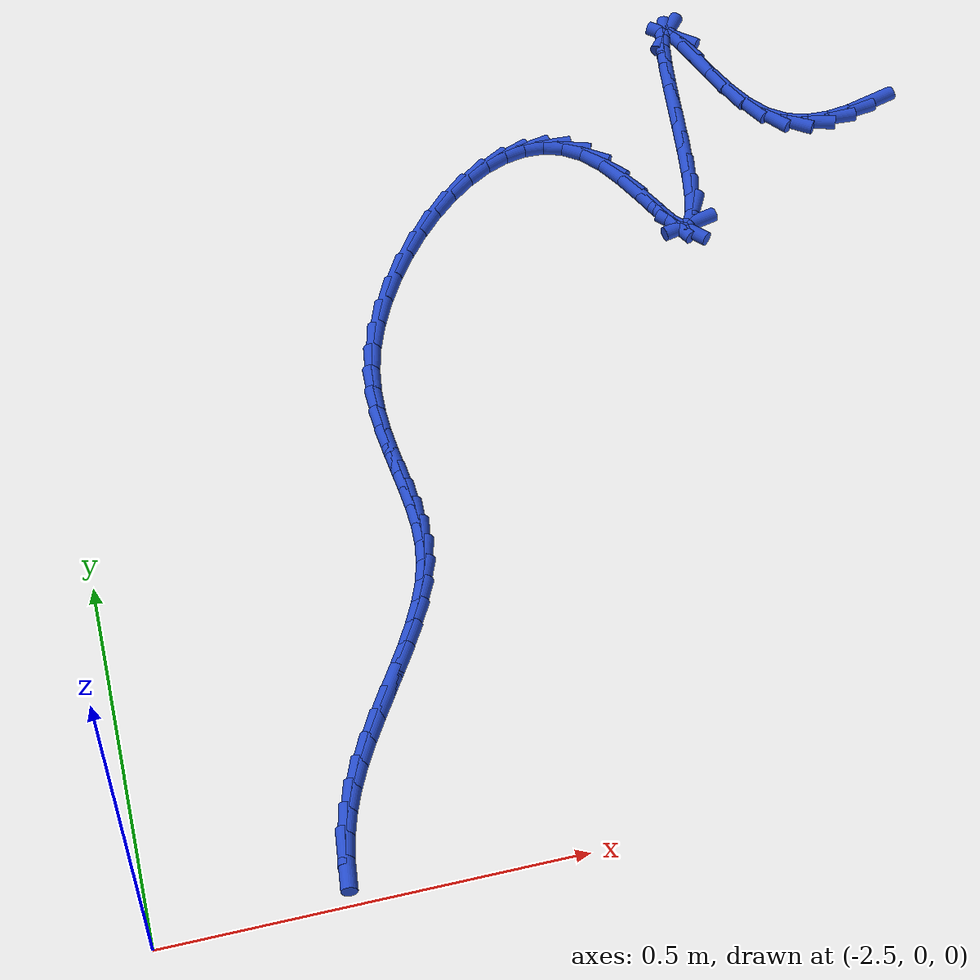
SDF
<sdf version="1.6">
 <world name="default">
  <model name="ground_plane">
   <static>1</static>
   <link name="link">
    <collision name="collision">
     <geometry><plane><normal>0 0 1</normal><size>100 100</size></plane></geometry>
     <surface><friction><ode><mu>100</mu><mu2>50</mu2></ode></friction></surface>
    </collision>
    <visual name="visual">
     <cast_shadows>0</cast_shadows>
     <geometry><plane><normal>0 0 1</normal><size>100 100</size></plane></geometry>
     <material>
      <script><uri>file://media/materials/scripts/gazebo.material</uri><name>Gazebo/WhiteGlow</name></script>
     </material>
    </visual>
   </link>
  </model>
  <model name="line">
   <link name="link_69">
    <pose>-1.290023211756222 1.083039104053508 0.01 0 1.57 0.29378081700761033</pose>
    <collision name="collision">
     <geometry><cylinder><radius>0.01</radius><length>0.08</length></cylinder></geometry>
    </collision>
    <visual name="visual">
     <material>
      <script><name>Gazebo/Blue</name><uri>file://media/materials/scripts/gazebo.material</uri></script>
     </material>
     <geometry><cylinder><radius>0.01</radius><length>0.08</length></cylinder></geometry>
    </visual>
   </link>
   <link name="link_70">
    <pose>-1.3250109071169014 1.0724541031591772 0.01 0 1.57 0.16319276041672318</pose>
    <collision name="collision">
     <geometry><cylinder><radius>0.01</radius><length>0.08</length></cylinder></geometry>
    </collision>
    <visual name="visual">
     <material>
      <script><name>Gazebo/Blue</name><uri>file://media/materials/scripts/gazebo.material</uri></script>
     </material>
     <geometry><cylinder><radius>0.01</radius><length>0.08</length></cylinder></geometry>
    </visual>
   </link>
   <link name="link_71">
    <pose>-1.3583430713101499 1.0669657266270685 0.01 0 1.57 -0.03488842412305928</pose>
    <collision name="collision">
     <geometry><cylinder><radius>0.01</radius><length>0.08</length></cylinder></geometry>
    </collision>
    <visual name="visual">
     <material>
      <script><name>Gazebo/Blue</name><uri>file://media/materials/scripts/gazebo.material</uri></script>
     </material>
     <geometry><cylinder><radius>0.01</radius><length>0.08</length></cylinder></geometry>
    </visual>
   </link>
   <link name="link_72">
    <pose>-1.389448326326677 1.068051380479019 0.01 0 1.57 -0.31222802528877996</pose>
    <collision name="collision">
     <geometry><cylinder><radius>0.01</radius><length>0.08</length></cylinder></geometry>
    </collision>
    <visual name="visual">
     <material>
      <script><name>Gazebo/Blue</name><uri>file://media/materials/scripts/gazebo.material</uri></script>
     </material>
     <geometry><cylinder><radius>0.01</radius><length>0.08</length></cylinder></geometry>
    </visual>
   </link>
   <link name="link_73">
    <pose>-1.4177552941571925 1.0771884707368655 0.01 0 1.57 -0.6425497125516809</pose>
    <collision name="collision">
     <geometry><cylinder><radius>0.01</radius><length>0.08</length></cylinder></geometry>
    </collision>
    <visual name="visual">
     <material>
      <script><name>Gazebo/Blue</name><uri>file://media/materials/scripts/gazebo.material</uri></script>
     </material>
     <geometry><cylinder><radius>0.01</radius><length>0.08</length></cylinder></geometry>
    </visual>
   </link>
   <link name="link_74">
    <pose>-1.4426925967924078 1.095854403422445 0.01 0 1.57 -0.9385215925162576</pose>
    <collision name="collision">
     <geometry><cylinder><radius>0.01</radius><length>0.08</length></cylinder></geometry>
    </collision>
    <visual name="visual">
     <material>
      <script><name>Gazebo/Blue</name><uri>file://media/materials/scripts/gazebo.material</uri></script>
     </material>
     <geometry><cylinder><radius>0.01</radius><length>0.08</length></cylinder></geometry>
    </visual>
   </link>
   <link name="link_75">
    <pose>-1.463839548652836 1.1247198432820689 0.01 0 1.57 -1.1140172660875471</pose>
    <collision name="collision">
     <geometry><cylinder><radius>0.01</radius><length>0.08</length></cylinder></geometry>
    </collision>
    <visual name="visual">
     <material>
      <script><name>Gazebo/Blue</name><uri>file://media/materials/scripts/gazebo.material</uri></script>
     </material>
     <geometry><cylinder><radius>0.01</radius><length>0.08</length></cylinder></geometry>
    </visual>
   </link>
   <link name="link_76">
    <pose>-1.4814892934178074 1.1606339258218832 0.01 0 1.57 -1.2086008629426042</pose>
    <collision name="collision">
     <geometry><cylinder><radius>0.01</radius><length>0.08</length></cylinder></geometry>
    </collision>
    <visual name="visual">
     <material>
      <script><name>Gazebo/Blue</name><uri>file://media/materials/scripts/gazebo.material</uri></script>
     </material>
     <geometry><cylinder><radius>0.01</radius><length>0.08</length></cylinder></geometry>
    </visual>
   </link>
   <link name="link_77">
    <pose>-1.4961461297307606 1.1993153553425617 0.01 0 1.57 -1.2544029904496805</pose>
    <collision name="collision">
     <geometry><cylinder><radius>0.01</radius><length>0.08</length></cylinder></geometry>
    </collision>
    <visual name="visual">
     <material>
      <script><name>Gazebo/Blue</name><uri>file://media/materials/scripts/gazebo.material</uri></script>
     </material>
     <geometry><cylinder><radius>0.01</radius><length>0.08</length></cylinder></geometry>
    </visual>
   </link>
   <link name="link_78">
    <pose>-1.508314388172138 1.2364826651680418 0.01 0 1.57 -1.2569046368338268</pose>
    <collision name="collision">
     <geometry><cylinder><radius>0.01</radius><length>0.08</length></cylinder></geometry>
    </collision>
    <visual name="visual">
     <material>
      <script><name>Gazebo/Blue</name><uri>file://media/materials/scripts/gazebo.material</uri></script>
     </material>
     <geometry><cylinder><radius>0.01</radius><length>0.08</length></cylinder></geometry>
    </visual>
   </link>
   <link name="link_79">
    <pose>-1.5184983993223826 1.2678543886222595 0.01 0 1.57 -1.1827737867173456</pose>
    <collision name="collision">
     <geometry><cylinder><radius>0.01</radius><length>0.08</length></cylinder></geometry>
    </collision>
    <visual name="visual">
     <material>
      <script><name>Gazebo/Blue</name><uri>file://media/materials/scripts/gazebo.material</uri></script>
     </material>
     <geometry><cylinder><radius>0.01</radius><length>0.08</length></cylinder></geometry>
    </visual>
   </link>
   <link name="link_80">
    <pose>-1.5272024937619384 1.2891490590291517 0.01 0 1.57 -0.7333412823702202</pose>
    <collision name="collision">
     <geometry><cylinder><radius>0.01</radius><length>0.08</length></cylinder></geometry>
    </collision>
    <visual name="visual">
     <material>
      <script><name>Gazebo/Blue</name><uri>file://media/materials/scripts/gazebo.material</uri></script>
     </material>
     <geometry><cylinder><radius>0.01</radius><length>0.08</length></cylinder></geometry>
    </visual>
   </link>
   <link name="link_81">
    <pose>-1.5349297071689867 1.2961109138793996 0.01 0 1.57 0.9132927384494756</pose>
    <collision name="collision">
     <geometry><cylinder><radius>0.01</radius><length>0.08</length></cylinder></geometry>
    </collision>
    <visual name="visual">
     <material>
      <script><name>Gazebo/Blue</name><uri>file://media/materials/scripts/gazebo.material</uri></script>
     </material>
     <geometry><cylinder><radius>0.01</radius><length>0.08</length></cylinder></geometry>
    </visual>
   </link>
   <link name="link_82">
    <pose>-1.542062756015265 1.286872560070612 0.01 0 1.57 1.2872680041271387</pose>
    <collision name="collision">
     <geometry><cylinder><radius>0.01</radius><length>0.08</length></cylinder></geometry>
    </collision>
    <visual name="visual">
     <material>
      <script><name>Gazebo/Blue</name><uri>file://media/materials/scripts/gazebo.material</uri></script>
     </material>
     <geometry><cylinder><radius>0.01</radius><length>0.08</length></cylinder></geometry>
    </visual>
   </link>
   <link name="link_83">
    <pose>-1.5487680576399494 1.263860201891994 0.01 0 1.57 1.3836565842123587</pose>
    <collision name="collision">
     <geometry><cylinder><radius>0.01</radius><length>0.08</length></cylinder></geometry>
    </collision>
    <visual name="visual">
     <material>
      <script><name>Gazebo/Blue</name><uri>file://media/materials/scripts/gazebo.material</uri></script>
     </material>
     <geometry><cylinder><radius>0.01</radius><length>0.08</length></cylinder></geometry>
    </visual>
   </link>
   <link name="link_84">
    <pose>-1.5551894430753543 1.229948388048584 0.01 0 1.57 1.4221211197336021</pose>
    <collision name="collision">
     <geometry><cylinder><radius>0.01</radius><length>0.08</length></cylinder></geometry>
    </collision>
    <visual name="visual">
     <material>
      <script><name>Gazebo/Blue</name><uri>file://media/materials/scripts/gazebo.material</uri></script>
     </material>
     <geometry><cylinder><radius>0.01</radius><length>0.08</length></cylinder></geometry>
    </visual>
   </link>
   <link name="link_85">
    <pose>-1.5614707433537927 1.188011667245419 0.01 0 1.57 1.43810355435242</pose>
    <collision name="collision">
     <geometry><cylinder><radius>0.01</radius><length>0.08</length></cylinder></geometry>
    </collision>
    <visual name="visual">
     <material>
      <script><name>Gazebo/Blue</name><uri>file://media/materials/scripts/gazebo.material</uri></script>
     </material>
     <geometry><cylinder><radius>0.01</radius><length>0.08</length></cylinder></geometry>
    </visual>
   </link>
   <link name="link_86">
    <pose>-1.5677557895075782 1.1409245881875367 0.01 0 1.57 1.441213597451574</pose>
    <collision name="collision">
     <geometry><cylinder><radius>0.01</radius><length>0.08</length></cylinder></geometry>
    </collision>
    <visual name="visual">
     <material>
      <script><name>Gazebo/Blue</name><uri>file://media/materials/scripts/gazebo.material</uri></script>
     </material>
     <geometry><cylinder><radius>0.01</radius><length>0.08</length></cylinder></geometry>
    </visual>
   </link>
   <link name="link_87">
    <pose>-1.5741884125690244 1.0915616995799753 0.01 0 1.57 1.433771579569157</pose>
    <collision name="collision">
     <geometry><cylinder><radius>0.01</radius><length>0.08</length></cylinder></geometry>
    </collision>
    <visual name="visual">
     <material>
      <script><name>Gazebo/Blue</name><uri>file://media/materials/scripts/gazebo.material</uri></script>
     </material>
     <geometry><cylinder><radius>0.01</radius><length>0.08</length></cylinder></geometry>
    </visual>
   </link>
   <link name="link_88">
    <pose>-1.580912443570445 1.042797550127772 0.01 0 1.57 1.4140203636498596</pose>
    <collision name="collision">
     <geometry><cylinder><radius>0.01</radius><length>0.08</length></cylinder></geometry>
    </collision>
    <visual name="visual">
     <material>
      <script><name>Gazebo/Blue</name><uri>file://media/materials/scripts/gazebo.material</uri></script>
     </material>
     <geometry><cylinder><radius>0.01</radius><length>0.08</length></cylinder></geometry>
    </visual>
   </link>
   <link name="link_89">
    <pose>-1.5880717135441538 0.9975066885359642 0.01 0 1.57 1.3746421633596664</pose>
    <collision name="collision">
     <geometry><cylinder><radius>0.01</radius><length>0.08</length></cylinder></geometry>
    </collision>
    <visual name="visual">
     <material>
      <script><name>Gazebo/Blue</name><uri>file://media/materials/scripts/gazebo.material</uri></script>
     </material>
     <geometry><cylinder><radius>0.01</radius><length>0.08</length></cylinder></geometry>
    </visual>
   </link>
   <link name="link_90">
    <pose>-1.5958100535224637 0.9585636635095902 0.01 0 1.57 1.2934416614085977</pose>
    <collision name="collision">
     <geometry><cylinder><radius>0.01</radius><length>0.08</length></cylinder></geometry>
    </collision>
    <visual name="visual">
     <material>
      <script><name>Gazebo/Blue</name><uri>file://media/materials/scripts/gazebo.material</uri></script>
     </material>
     <geometry><cylinder><radius>0.01</radius><length>0.08</length></cylinder></geometry>
    </visual>
   </link>
   <link name="link_91">
    <pose>-1.6042712945376887 0.9288430237536878 0.01 0 1.57 1.0839956717503303</pose>
    <collision name="collision">
     <geometry><cylinder><radius>0.01</radius><length>0.08</length></cylinder></geometry>
    </collision>
    <visual name="visual">
     <material>
      <script><name>Gazebo/Blue</name><uri>file://media/materials/scripts/gazebo.material</uri></script>
     </material>
     <geometry><cylinder><radius>0.01</radius><length>0.08</length></cylinder></geometry>
    </visual>
   </link>
   <link name="link_92">
    <pose>-1.613599267622143 0.9112193179732937 0.01 0 1.57 0.2511934202002052</pose>
    <collision name="collision">
     <geometry><cylinder><radius>0.01</radius><length>0.08</length></cylinder></geometry>
    </collision>
    <visual name="visual">
     <material>
      <script><name>Gazebo/Blue</name><uri>file://media/materials/scripts/gazebo.material</uri></script>
     </material>
     <geometry><cylinder><radius>0.01</radius><length>0.08</length></cylinder></geometry>
    </visual>
   </link>
   <link name="link_93">
    <pose>-1.623937821170814 0.9085663051494959 0.01 0 1.57 -0.8663446707882377</pose>
    <collision name="collision">
     <geometry><cylinder><radius>0.01</radius><length>0.08</length></cylinder></geometry>
    </collision>
    <visual name="visual">
     <material>
      <script><name>Gazebo/Blue</name><uri>file://media/materials/scripts/gazebo.material</uri></script>
     </material>
     <geometry><cylinder><radius>0.01</radius><length>0.08</length></cylinder></geometry>
    </visual>
   </link>
   <link name="link_94">
    <pose>-1.6354665751320003 0.92213071077384 0.01 0 1.57 -1.1065443430397939</pose>
    <collision name="collision">
     <geometry><cylinder><radius>0.01</radius><length>0.08</length></cylinder></geometry>
    </collision>
    <visual name="visual">
     <material>
      <script><name>Gazebo/Blue</name><uri>file://media/materials/scripts/gazebo.material</uri></script>
     </material>
     <geometry><cylinder><radius>0.01</radius><length>0.08</length></cylinder></geometry>
    </visual>
   </link>
   <link name="link_95">
    <pose>-1.6484761482379608 0.9481105911557858 0.01 0 1.57 -1.1560161201000567</pose>
    <collision name="collision">
     <geometry><cylinder><radius>0.01</radius><length>0.08</length></cylinder></geometry>
    </collision>
    <visual name="visual">
     <material>
      <script><name>Gazebo/Blue</name><uri>file://media/materials/scripts/gazebo.material</uri></script>
     </material>
     <geometry><cylinder><radius>0.01</radius><length>0.08</length></cylinder></geometry>
    </visual>
   </link>
   <link name="link_96">
    <pose>-1.6632786249674427 0.9817276544962056 0.01 0 1.57 -1.1367532796408353</pose>
    <collision name="collision">
     <geometry><cylinder><radius>0.01</radius><length>0.08</length></cylinder></geometry>
    </collision>
    <visual name="visual">
     <material>
      <script><name>Gazebo/Blue</name><uri>file://media/materials/scripts/gazebo.material</uri></script>
     </material>
     <geometry><cylinder><radius>0.01</radius><length>0.08</length></cylinder></geometry>
    </visual>
   </link>
   <link name="link_97">
    <pose>-1.6801860897991947 1.0182036089959725 0.01 0 1.57 -1.060905928306116</pose>
    <collision name="collision">
     <geometry><cylinder><radius>0.01</radius><length>0.08</length></cylinder></geometry>
    </collision>
    <visual name="visual">
     <material>
      <script><name>Gazebo/Blue</name><uri>file://media/materials/scripts/gazebo.material</uri></script>
     </material>
     <geometry><cylinder><radius>0.01</radius><length>0.08</length></cylinder></geometry>
    </visual>
   </link>
   <link name="link_98">
    <pose>-1.6995106272119633 1.0527601628559584 0.01 0 1.57 -0.9015701580117793</pose>
    <collision name="collision">
     <geometry><cylinder><radius>0.01</radius><length>0.08</length></cylinder></geometry>
    </collision>
    <visual name="visual">
     <material>
      <script><name>Gazebo/Blue</name><uri>file://media/materials/scripts/gazebo.material</uri></script>
     </material>
     <geometry><cylinder><radius>0.01</radius><length>0.08</length></cylinder></geometry>
    </visual>
   </link>
   <link name="link_99">
    <pose>-1.7215615388177417 1.0806375833988247 0.01 0 1.57 -0.6348040131214505</pose>
    <collision name="collision">
     <geometry><cylinder><radius>0.01</radius><length>0.08</length></cylinder></geometry>
    </collision>
    <visual name="visual">
     <material>
      <script><name>Gazebo/Blue</name><uri>file://media/materials/scripts/gazebo.material</uri></script>
     </material>
     <geometry><cylinder><radius>0.01</radius><length>0.08</length></cylinder></geometry>
    </visual>
   </link>
   <link name="link_100">
    <pose>-1.7463729709911662 1.098911166358845 0.01 0 1.57 -0.3241734204825574</pose>
    <collision name="collision">
     <geometry><cylinder><radius>0.01</radius><length>0.08</length></cylinder></geometry>
    </collision>
    <visual name="visual">
     <material>
      <script><name>Gazebo/Blue</name><uri>file://media/materials/scripts/gazebo.material</uri></script>
     </material>
     <geometry><cylinder><radius>0.01</radius><length>0.08</length></cylinder></geometry>
    </visual>
   </link>
   <link name="link_101">
    <pose>-1.7734749555233758 1.1080181808504994 0.01 0 1.57 -0.025531471626704574</pose>
    <collision name="collision">
     <geometry><cylinder><radius>0.01</radius><length>0.08</length></cylinder></geometry>
    </collision>
    <visual name="visual">
     <material>
      <script><name>Gazebo/Blue</name><uri>file://media/materials/scripts/gazebo.material</uri></script>
     </material>
     <geometry><cylinder><radius>0.01</radius><length>0.08</length></cylinder></geometry>
    </visual>
   </link>
   <link name="link_102">
    <pose>-1.8023436179318877 1.1087554004796685 0.01 0 1.57 0.22323300999639106</pose>
    <collision name="collision">
     <geometry><cylinder><radius>0.01</radius><length>0.08</length></cylinder></geometry>
    </collision>
    <visual name="visual">
     <material>
      <script><name>Gazebo/Blue</name><uri>file://media/materials/scripts/gazebo.material</uri></script>
     </material>
     <geometry><cylinder><radius>0.01</radius><length>0.08</length></cylinder></geometry>
    </visual>
   </link>
   <link name="link_103">
    <pose>-1.8324550837342204 1.1019195988522323 0.01 0 1.57 0.4157745542158567</pose>
    <collision name="collision">
     <geometry><cylinder><radius>0.01</radius><length>0.08</length></cylinder></geometry>
    </collision>
    <visual name="visual">
     <material>
      <script><name>Gazebo/Blue</name><uri>file://media/materials/scripts/gazebo.material</uri></script>
     </material>
     <geometry><cylinder><radius>0.01</radius><length>0.08</length></cylinder></geometry>
    </visual>
   </link>
   <link name="link_104">
    <pose>-1.863285478447891 1.088307549574071 0.01 0 1.57 0.5632356793448292</pose>
    <collision name="collision">
     <geometry><cylinder><radius>0.01</radius><length>0.08</length></cylinder></geometry>
    </collision>
    <visual name="visual">
     <material>
      <script><name>Gazebo/Blue</name><uri>file://media/materials/scripts/gazebo.material</uri></script>
     </material>
     <geometry><cylinder><radius>0.01</radius><length>0.08</length></cylinder></geometry>
    </visual>
   </link>
   <link name="link_105">
    <pose>-1.8943109275904166 1.068716026251064 0.01 0 1.57 0.6790350099013437</pose>
    <collision name="collision">
     <geometry><cylinder><radius>0.01</radius><length>0.08</length></cylinder></geometry>
    </collision>
    <visual name="visual">
     <material>
      <script><name>Gazebo/Blue</name><uri>file://media/materials/scripts/gazebo.material</uri></script>
     </material>
     <geometry><cylinder><radius>0.01</radius><length>0.08</length></cylinder></geometry>
    </visual>
   </link>
   <link name="link_106">
    <pose>-1.925007556679314 1.043941802489091 0.01 0 1.57 0.7738099259403253</pose>
    <collision name="collision">
     <geometry><cylinder><radius>0.01</radius><length>0.08</length></cylinder></geometry>
    </collision>
    <visual name="visual">
     <material>
      <script><name>Gazebo/Blue</name><uri>file://media/materials/scripts/gazebo.material</uri></script>
     </material>
     <geometry><cylinder><radius>0.01</radius><length>0.08</length></cylinder></geometry>
    </visual>
   </link>
   <link name="link_107">
    <pose>-1.9548514912321016 1.0147816518940327 0.01 0 1.57 0.855231682009435</pose>
    <collision name="collision">
     <geometry><cylinder><radius>0.01</radius><length>0.08</length></cylinder></geometry>
    </collision>
    <visual name="visual">
     <material>
      <script><name>Gazebo/Blue</name><uri>file://media/materials/scripts/gazebo.material</uri></script>
     </material>
     <geometry><cylinder><radius>0.01</radius><length>0.08</length></cylinder></geometry>
    </visual>
   </link>
   <link name="link_108">
    <pose>-1.9833188567662958 0.9820323480717685 0.01 0 1.57 0.9289059175833554</pose>
    <collision name="collision">
     <geometry><cylinder><radius>0.01</radius><length>0.08</length></cylinder></geometry>
    </collision>
    <visual name="visual">
     <material>
      <script><name>Gazebo/Blue</name><uri>file://media/materials/scripts/gazebo.material</uri></script>
     </material>
     <geometry><cylinder><radius>0.01</radius><length>0.08</length></cylinder></geometry>
    </visual>
   </link>
   <link name="link_109">
    <pose>-2.0098857787994153 0.9464906646281791 0.01 0 1.57 0.9992423009577356</pose>
    <collision name="collision">
     <geometry><cylinder><radius>0.01</radius><length>0.08</length></cylinder></geometry>
    </collision>
    <visual name="visual">
     <material>
      <script><name>Gazebo/Blue</name><uri>file://media/materials/scripts/gazebo.material</uri></script>
     </material>
     <geometry><cylinder><radius>0.01</radius><length>0.08</length></cylinder></geometry>
    </visual>
   </link>
   <link name="link_110">
    <pose>-2.0340283828489762 0.9089533751691435 0.01 0 1.57 1.0701449909605576</pose>
    <collision name="collision">
     <geometry><cylinder><radius>0.01</radius><length>0.08</length></cylinder></geometry>
    </collision>
    <visual name="visual">
     <material>
      <script><name>Gazebo/Blue</name><uri>file://media/materials/scripts/gazebo.material</uri></script>
     </material>
     <geometry><cylinder><radius>0.01</radius><length>0.08</length></cylinder></geometry>
    </visual>
   </link>
   <link name="link_111">
    <pose>-2.0552227944324963 0.8702172533005423 0.01 0 1.57 1.1456041377529678</pose>
    <collision name="collision">
     <geometry><cylinder><radius>0.01</radius><length>0.08</length></cylinder></geometry>
    </collision>
    <visual name="visual">
     <material>
      <script><name>Gazebo/Blue</name><uri>file://media/materials/scripts/gazebo.material</uri></script>
     </material>
     <geometry><cylinder><radius>0.01</radius><length>0.08</length></cylinder></geometry>
    </visual>
   </link>
   <link name="link_112">
    <pose>-2.072945139067493 0.8310790726282549 0.01 0 1.57 1.2303052480882128</pose>
    <collision name="collision">
     <geometry><cylinder><radius>0.01</radius><length>0.08</length></cylinder></geometry>
    </collision>
    <visual name="visual">
     <material>
      <script><name>Gazebo/Blue</name><uri>file://media/materials/scripts/gazebo.material</uri></script>
     </material>
     <geometry><cylinder><radius>0.01</radius><length>0.08</length></cylinder></geometry>
    </visual>
   </link>
   <link name="link_113">
    <pose>-2.0866715422714837 0.7923356067581625 0.01 0 1.57 1.3286090680550628</pose>
    <collision name="collision">
     <geometry><cylinder><radius>0.01</radius><length>0.08</length></cylinder></geometry>
    </collision>
    <visual name="visual">
     <material>
      <script><name>Gazebo/Blue</name><uri>file://media/materials/scripts/gazebo.material</uri></script>
     </material>
     <geometry><cylinder><radius>0.01</radius><length>0.08</length></cylinder></geometry>
    </visual>
   </link>
   <link name="link_114">
    <pose>-2.095962567608346 0.7547256306343577 0.01 0 1.57 1.428030621107203</pose>
    <collision name="collision">
     <geometry><cylinder><radius>0.01</radius><length>0.08</length></cylinder></geometry>
    </collision>
    <visual name="visual">
     <material>
      <script><name>Gazebo/Blue</name><uri>file://media/materials/scripts/gazebo.material</uri></script>
     </material>
     <geometry><cylinder><radius>0.01</radius><length>0.08</length></cylinder></geometry>
    </visual>
   </link>
   <link name="link_115">
    <pose>-2.1011786065542126 0.7184385347638335 0.01 0 1.57 1.5154758202151226</pose>
    <collision name="collision">
     <geometry><cylinder><radius>0.01</radius><length>0.08</length></cylinder></geometry>
    </collision>
    <visual name="visual">
     <material>
      <script><name>Gazebo/Blue</name><uri>file://media/materials/scripts/gazebo.material</uri></script>
     </material>
     <geometry><cylinder><radius>0.01</radius><length>0.08</length></cylinder></geometry>
    </visual>
   </link>
   <link name="link_116">
    <pose>-2.1031211090240385 0.6833607561826789 0.01 0 1.57 -1.5553505354005002</pose>
    <collision name="collision">
     <geometry><cylinder><radius>0.01</radius><length>0.08</length></cylinder></geometry>
    </collision>
    <visual name="visual">
     <material>
      <script><name>Gazebo/Blue</name><uri>file://media/materials/scripts/gazebo.material</uri></script>
     </material>
     <geometry><cylinder><radius>0.01</radius><length>0.08</length></cylinder></geometry>
    </visual>
   </link>
   <link name="link_117">
    <pose>-2.102596139064694 0.6493755625798966 0.01 0 1.57 -1.5046577918461332</pose>
    <collision name="collision">
     <geometry><cylinder><radius>0.01</radius><length>0.08</length></cylinder></geometry>
    </collision>
    <visual name="visual">
     <material>
      <script><name>Gazebo/Blue</name><uri>file://media/materials/scripts/gazebo.material</uri></script>
     </material>
     <geometry><cylinder><radius>0.01</radius><length>0.08</length></cylinder></geometry>
    </visual>
   </link>
   <link name="link_118">
    <pose>-2.100409760723049 0.6163662216444891 0.01 0 1.57 -1.476467405493946</pose>
    <collision name="collision">
     <geometry><cylinder><radius>0.01</radius><length>0.08</length></cylinder></geometry>
    </collision>
    <visual name="visual">
     <material>
      <script><name>Gazebo/Blue</name><uri>file://media/materials/scripts/gazebo.material</uri></script>
     </material>
     <geometry><cylinder><radius>0.01</radius><length>0.08</length></cylinder></geometry>
    </visual>
   </link>
   <link name="link_119">
    <pose>-2.0973680380459716 0.5842160010654588 0.01 0 1.57 -1.4726971907231012</pose>
    <collision name="collision">
     <geometry><cylinder><radius>0.01</radius><length>0.08</length></cylinder></geometry>
    </collision>
    <visual name="visual">
     <material>
      <script><name>Gazebo/Blue</name><uri>file://media/materials/scripts/gazebo.material</uri></script>
     </material>
     <geometry><cylinder><radius>0.01</radius><length>0.08</length></cylinder></geometry>
    </visual>
   </link>
   <link name="link_120">
    <pose>-2.0942770350803315 0.5528081685318081 0.01 0 1.57 -1.495110955267782</pose>
    <collision name="collision">
     <geometry><cylinder><radius>0.01</radius><length>0.08</length></cylinder></geometry>
    </collision>
    <visual name="visual">
     <material>
      <script><name>Gazebo/Blue</name><uri>file://media/materials/scripts/gazebo.material</uri></script>
     </material>
     <geometry><cylinder><radius>0.01</radius><length>0.08</length></cylinder></geometry>
    </visual>
   </link>
   <link name="link_121">
    <pose>-2.091942815872998 0.5220259917325396 0.01 0 1.57 -1.5453215447773037</pose>
    <collision name="collision">
     <geometry><cylinder><radius>0.01</radius><length>0.08</length></cylinder></geometry>
    </collision>
    <visual name="visual">
     <material>
      <script><name>Gazebo/Blue</name><uri>file://media/materials/scripts/gazebo.material</uri></script>
     </material>
     <geometry><cylinder><radius>0.01</radius><length>0.08</length></cylinder></geometry>
    </visual>
   </link>
   <link name="link_122">
    <pose>-2.0911714444708407 0.49175273835665584 0.01 0 1.57 1.5173838696307989</pose>
    <collision name="collision">
     <geometry><cylinder><radius>0.01</radius><length>0.08</length></cylinder></geometry>
    </collision>
    <visual name="visual">
     <material>
      <script><name>Gazebo/Blue</name><uri>file://media/materials/scripts/gazebo.material</uri></script>
     </material>
     <geometry><cylinder><radius>0.01</radius><length>0.08</length></cylinder></geometry>
    </visual>
   </link>
   <link name="link_123">
    <pose>-2.0927689849207276 0.4618716760931596 0.01 0 1.57 1.4109942834176712</pose>
    <collision name="collision">
     <geometry><cylinder><radius>0.01</radius><length>0.08</length></cylinder></geometry>
    </collision>
    <visual name="visual">
     <material>
      <script><name>Gazebo/Blue</name><uri>file://media/materials/scripts/gazebo.material</uri></script>
     </material>
     <geometry><cylinder><radius>0.01</radius><length>0.08</length></cylinder></geometry>
    </visual>
   </link>
   <link name="link_124">
    <pose>-2.097540700350078 0.4322661212029658 0.01 0 1.57 1.2930556180335937</pose>
    <collision name="collision">
     <geometry><cylinder><radius>0.01</radius><length>0.08</length></cylinder></geometry>
    </collision>
    <visual name="visual">
     <material>
      <script><name>Gazebo/Blue</name><uri>file://media/materials/scripts/gazebo.material</uri></script>
     </material>
     <geometry><cylinder><radius>0.01</radius><length>0.08</length></cylinder></geometry>
    </visual>
   </link>
   <link name="link_125">
    <pose>-2.105929995379358 0.40284133492537594 0.01 0 1.57 1.1960326459145776</pose>
    <collision name="collision">
     <geometry><cylinder><radius>0.01</radius><length>0.08</length></cylinder></geometry>
    </collision>
    <visual name="visual">
     <material>
      <script><name>Gazebo/Blue</name><uri>file://media/materials/scripts/gazebo.material</uri></script>
     </material>
     <geometry><cylinder><radius>0.01</radius><length>0.08</length></cylinder></geometry>
    </visual>
   </link>
   <link name="link_126">
    <pose>-2.1174482698058825 0.37355910011050236 0.01 0 1.57 1.1230098721207984</pose>
    <collision name="collision">
     <geometry><cylinder><radius>0.01</radius><length>0.08</length></cylinder></geometry>
    </collision>
    <visual name="visual">
     <material>
      <script><name>Gazebo/Blue</name><uri>file://media/materials/scripts/gazebo.material</uri></script>
     </material>
     <geometry><cylinder><radius>0.01</radius><length>0.08</length></cylinder></geometry>
    </visual>
   </link>
   <link name="link_127">
    <pose>-2.1314589187005404 0.3443901753834082 0.01 0 1.57 1.0713978946015748</pose>
    <collision name="collision">
     <geometry><cylinder><radius>0.01</radius><length>0.08</length></cylinder></geometry>
    </collision>
    <visual name="visual">
     <material>
      <script><name>Gazebo/Blue</name><uri>file://media/materials/scripts/gazebo.material</uri></script>
     </material>
     <geometry><cylinder><radius>0.01</radius><length>0.08</length></cylinder></geometry>
    </visual>
   </link>
   <link name="link_128">
    <pose>-2.1473253371342227 0.31530531936915634 0.01 0 1.57 1.0388395189971922</pose>
    <collision name="collision">
     <geometry><cylinder><radius>0.01</radius><length>0.08</length></cylinder></geometry>
    </collision>
    <visual name="visual">
     <material>
      <script><name>Gazebo/Blue</name><uri>file://media/materials/scripts/gazebo.material</uri></script>
     </material>
     <geometry><cylinder><radius>0.01</radius><length>0.08</length></cylinder></geometry>
    </visual>
   </link>
   <link name="link_129">
    <pose>-2.164410920177818 0.28627529069280955 0.01 0 1.57 1.023673861759324</pose>
    <collision name="collision">
     <geometry><cylinder><radius>0.01</radius><length>0.08</length></cylinder></geometry>
    </collision>
    <visual name="visual">
     <material>
      <script><name>Gazebo/Blue</name><uri>file://media/materials/scripts/gazebo.material</uri></script>
     </material>
     <geometry><cylinder><radius>0.01</radius><length>0.08</length></cylinder></geometry>
    </visual>
   </link>
   <link name="link_130">
    <pose>-2.1820790629022184 0.25727084797943095 0.01 0 1.57 1.0250899428407962</pose>
    <collision name="collision">
     <geometry><cylinder><radius>0.01</radius><length>0.08</length></cylinder></geometry>
    </collision>
    <visual name="visual">
     <material>
      <script><name>Gazebo/Blue</name><uri>file://media/materials/scripts/gazebo.material</uri></script>
     </material>
     <geometry><cylinder><radius>0.01</radius><length>0.08</length></cylinder></geometry>
    </visual>
   </link>
   <link name="link_131">
    <pose>-2.1996931603783128 0.22826274985408349 0.01 0 1.57 1.0431621698682036</pose>
    <collision name="collision">
     <geometry><cylinder><radius>0.01</radius><length>0.08</length></cylinder></geometry>
    </collision>
    <visual name="visual">
     <material>
      <script><name>Gazebo/Blue</name><uri>file://media/materials/scripts/gazebo.material</uri></script>
     </material>
     <geometry><cylinder><radius>0.01</radius><length>0.08</length></cylinder></geometry>
    </visual>
   </link>
   <link name="link_132">
    <pose>-2.2166166076769906 0.19922175494182984 0.01 0 1.57 1.0788475808254603</pose>
    <collision name="collision">
     <geometry><cylinder><radius>0.01</radius><length>0.08</length></cylinder></geometry>
    </collision>
    <visual name="visual">
     <material>
      <script><name>Gazebo/Blue</name><uri>file://media/materials/scripts/gazebo.material</uri></script>
     </material>
     <geometry><cylinder><radius>0.01</radius><length>0.08</length></cylinder></geometry>
    </visual>
   </link>
   <link name="link_133">
    <pose>-2.232212799869144 0.1701186218677331 0.01 0 1.57 1.1339370417621673</pose>
    <collision name="collision">
     <geometry><cylinder><radius>0.01</radius><length>0.08</length></cylinder></geometry>
    </collision>
    <visual name="visual">
     <material>
      <script><name>Gazebo/Blue</name><uri>file://media/materials/scripts/gazebo.material</uri></script>
     </material>
     <geometry><cylinder><radius>0.01</radius><length>0.08</length></cylinder></geometry>
    </visual>
   </link>
   <link name="link_134">
    <pose>-2.245845159876271 0.14092410794506896 0.01 0 1.57 1.2071193050215725</pose>
    <collision name="collision">
     <geometry><cylinder><radius>0.01</radius><length>0.08</length></cylinder></geometry>
    </collision>
    <visual name="visual">
     <material>
      <script><name>Gazebo/Blue</name><uri>file://media/materials/scripts/gazebo.material</uri></script>
     </material>
     <geometry><cylinder><radius>0.01</radius><length>0.08</length></cylinder></geometry>
    </visual>
   </link>
   <link name="link_135">
    <pose>-2.25700498912467 0.11160294730022834 0.01 0 1.57 1.2871251904311158</pose>
    <collision name="collision">
     <geometry><cylinder><radius>0.01</radius><length>0.08</length></cylinder></geometry>
    </collision>
    <visual name="visual">
     <material>
      <script><name>Gazebo/Blue</name><uri>file://media/materials/scripts/gazebo.material</uri></script>
     </material>
     <geometry><cylinder><radius>0.01</radius><length>0.08</length></cylinder></geometry>
    </visual>
   </link>
   <link name="link_136">
    <pose>-2.265606086422162 0.08209997407179112 0.01 0 1.57 1.3703481626723775</pose>
    <collision name="collision">
     <geometry><cylinder><radius>0.01</radius><length>0.08</length></cylinder></geometry>
    </collision>
    <visual name="visual">
     <material>
      <script><name>Gazebo/Blue</name><uri>file://media/materials/scripts/gazebo.material</uri></script>
     </material>
     <geometry><cylinder><radius>0.01</radius><length>0.08</length></cylinder></geometry>
    </visual>
   </link>
   <link name="link_137">
    <pose>-2.2716493842555 0.05235591832758078 0.01 0 1.57 1.4552704432361043</pose>
    <collision name="collision">
     <geometry><cylinder><radius>0.01</radius><length>0.08</length></cylinder></geometry>
    </collision>
    <visual name="visual">
     <material>
      <script><name>Gazebo/Blue</name><uri>file://media/materials/scripts/gazebo.material</uri></script>
     </material>
     <geometry><cylinder><radius>0.01</radius><length>0.08</length></cylinder></geometry>
    </visual>
   </link>
  </model>
 </world>
</sdf>
